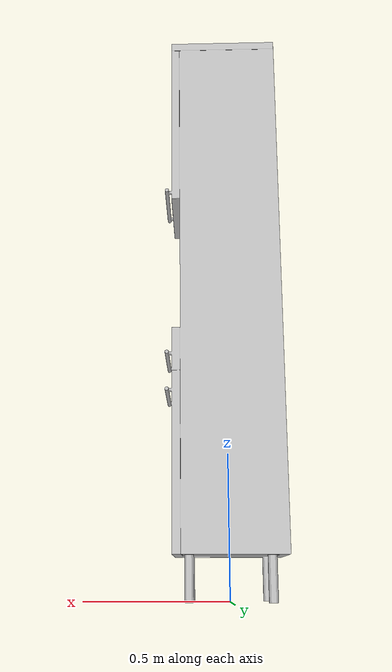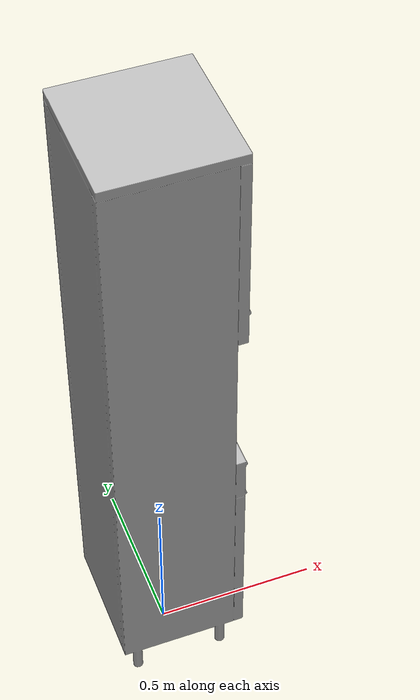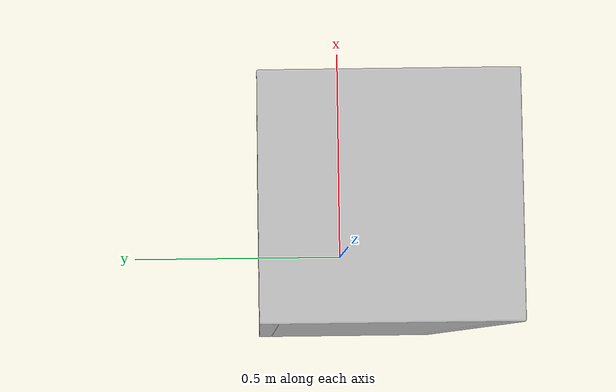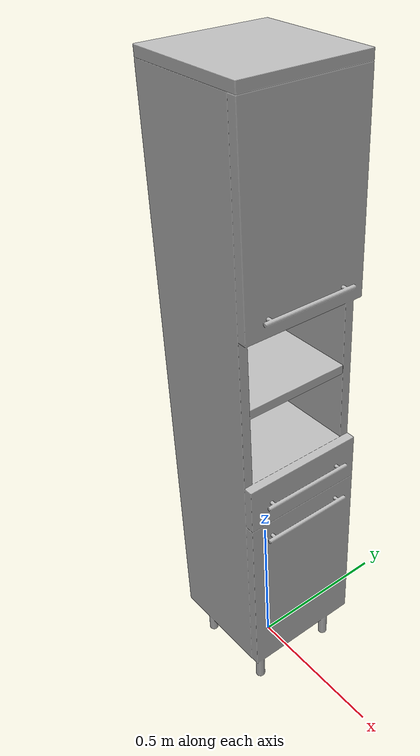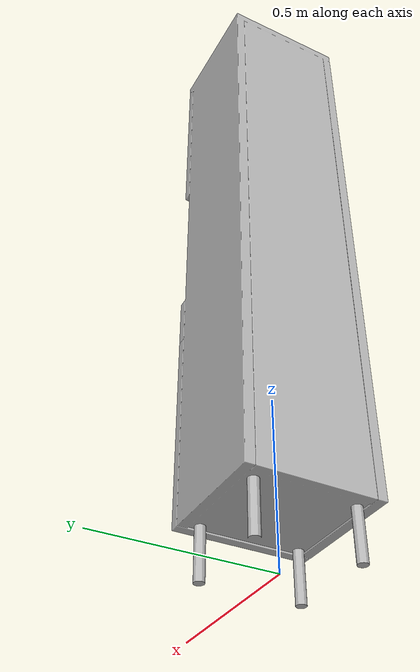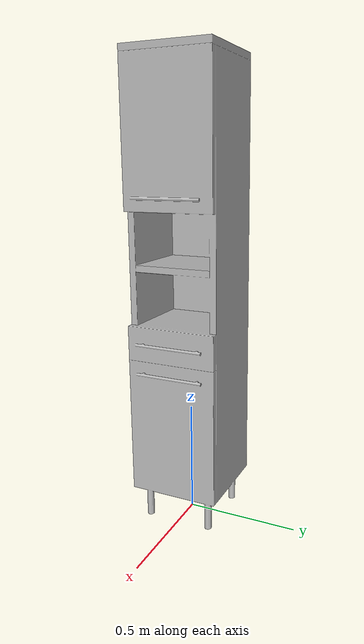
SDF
<?xml version='1.0'?>
<sdf version='1.4'>
  <model name='191'>
    <pose>0 0 0 0 0 0</pose>
    <static>true</static>
    <link name='link'>
      <collision name='collision'>
        <pose>0 0 0 0 0 0</pose>
        <geometry>
          <box>
            <size>0.410355 0.4 2</size>
          </box>
        </geometry>
      </collision>
      <visual name='visual'>
        <pose>0 0 0 0 0 0</pose>
        <geometry>
          <mesh><uri>model://191/191.dae</uri></mesh>
        </geometry>
      </visual>
    </link>
  </model>
</sdf>
